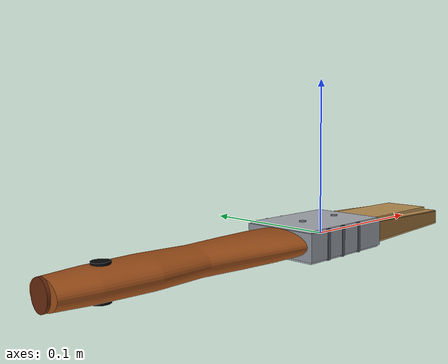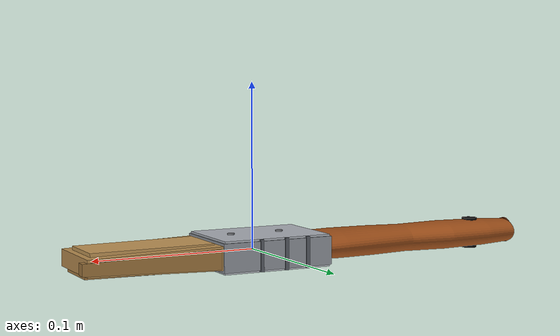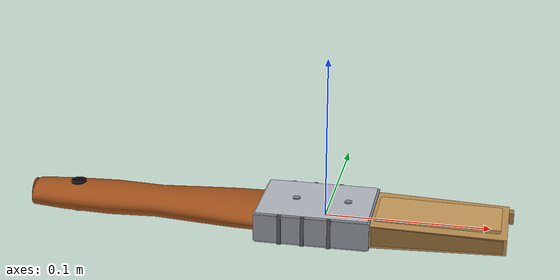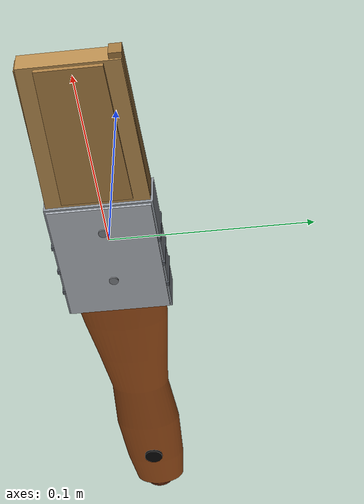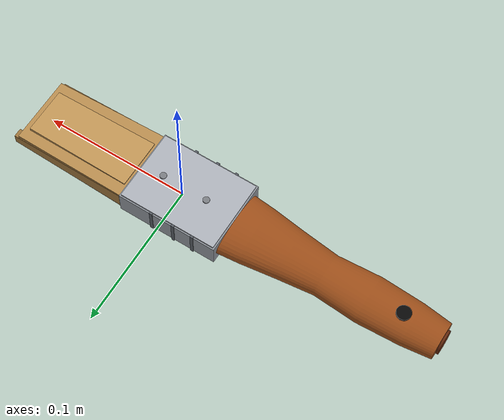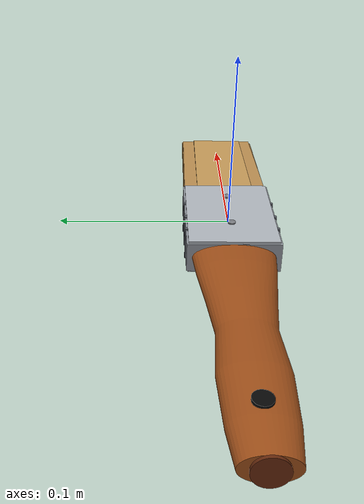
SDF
<?xml version="1.0"?>
<sdf version="1.6">
  <model name="paint_brush">
    <static>false</static>
    <link name="brush_link">
      <inertial>
        <mass>0.085</mass>
        <pose>-0.045 0 0 0 0 0</pose>
        <inertia>
          <ixx>0.000020</ixx><iyy>0.00038</iyy><izz>0.00039</izz>
          <ixy>0</ixy><ixz>0</ixz><iyz>0</iyz>
        </inertia>
      </inertial>

      <!-- Wooden handle -->
      <visual name="wood_handle"><geometry><mesh><uri>model://paint_brush/meshes/wood_handle.stl</uri></mesh></geometry><material><ambient>0.28 0.13 0.045 1</ambient><diffuse>0.62 0.31 0.10 1</diffuse><specular>0.08 0.06 0.04 1</specular></material></visual>
      <visual name="handle_end_cap"><geometry><mesh><uri>model://paint_brush/meshes/handle_end_cap.stl</uri></mesh></geometry><material><ambient>0.18 0.07 0.02 1</ambient><diffuse>0.40 0.16 0.05 1</diffuse><specular>0.06 0.04 0.02 1</specular></material></visual>
      <visual name="hole_top"><geometry><mesh><uri>model://paint_brush/meshes/hole_top.stl</uri></mesh></geometry><material><ambient>0.02 0.02 0.02 1</ambient><diffuse>0.03 0.03 0.03 1</diffuse><specular>0.08 0.08 0.08 1</specular></material></visual>
      <visual name="hole_bottom"><geometry><mesh><uri>model://paint_brush/meshes/hole_bottom.stl</uri></mesh></geometry><material><ambient>0.02 0.02 0.02 1</ambient><diffuse>0.03 0.03 0.03 1</diffuse><specular>0.08 0.08 0.08 1</specular></material></visual>

      <!-- Stainless ferrule -->
      <visual name="ferrule_body"><geometry><mesh><uri>model://paint_brush/meshes/ferrule_body.stl</uri></mesh></geometry><material><ambient>0.20 0.21 0.22 1</ambient><diffuse>0.56 0.58 0.61 1</diffuse><specular>0.95 0.95 0.95 1</specular></material></visual>
      <visual name="ferrule_face_top"><geometry><mesh><uri>model://paint_brush/meshes/ferrule_face_top.stl</uri></mesh></geometry><material><ambient>0.28 0.29 0.30 1</ambient><diffuse>0.68 0.70 0.73 1</diffuse><specular>1 1 1 1</specular></material></visual>
      <visual name="ferrule_face_bottom"><geometry><mesh><uri>model://paint_brush/meshes/ferrule_face_bottom.stl</uri></mesh></geometry><material><ambient>0.28 0.29 0.30 1</ambient><diffuse>0.68 0.70 0.73 1</diffuse><specular>1 1 1 1</specular></material></visual>
      <visual name="crimp1"><geometry><mesh><uri>model://paint_brush/meshes/ferrule_crimp_1.stl</uri></mesh></geometry><material><ambient>0.11 0.12 0.13 1</ambient><diffuse>0.34 0.36 0.39 1</diffuse><specular>0.85 0.85 0.85 1</specular></material></visual>
      <visual name="crimp2"><geometry><mesh><uri>model://paint_brush/meshes/ferrule_crimp_2.stl</uri></mesh></geometry><material><ambient>0.11 0.12 0.13 1</ambient><diffuse>0.34 0.36 0.39 1</diffuse><specular>0.85 0.85 0.85 1</specular></material></visual>
      <visual name="crimp3"><geometry><mesh><uri>model://paint_brush/meshes/ferrule_crimp_3.stl</uri></mesh></geometry><material><ambient>0.11 0.12 0.13 1</ambient><diffuse>0.34 0.36 0.39 1</diffuse><specular>0.85 0.85 0.85 1</specular></material></visual>
      <visual name="rivet_top_1"><geometry><mesh><uri>model://paint_brush/meshes/rivet_top_1.stl</uri></mesh></geometry><material><ambient>0.17 0.17 0.18 1</ambient><diffuse>0.48 0.49 0.51 1</diffuse><specular>1 1 1 1</specular></material></visual>
      <visual name="rivet_top_2"><geometry><mesh><uri>model://paint_brush/meshes/rivet_top_2.stl</uri></mesh></geometry><material><ambient>0.17 0.17 0.18 1</ambient><diffuse>0.48 0.49 0.51 1</diffuse><specular>1 1 1 1</specular></material></visual>
      <visual name="rivet_bottom_1"><geometry><mesh><uri>model://paint_brush/meshes/rivet_bottom_1.stl</uri></mesh></geometry><material><ambient>0.17 0.17 0.18 1</ambient><diffuse>0.48 0.49 0.51 1</diffuse><specular>1 1 1 1</specular></material></visual>
      <visual name="rivet_bottom_2"><geometry><mesh><uri>model://paint_brush/meshes/rivet_bottom_2.stl</uri></mesh></geometry><material><ambient>0.17 0.17 0.18 1</ambient><diffuse>0.48 0.49 0.51 1</diffuse><specular>1 1 1 1</specular></material></visual>

      <!-- Natural bristles -->
      <visual name="bristles_center"><geometry><mesh><uri>model://paint_brush/meshes/bristles_center.stl</uri></mesh></geometry><material><ambient>0.30 0.21 0.11 1</ambient><diffuse>0.72 0.55 0.31 1</diffuse><specular>0.04 0.04 0.03 1</specular></material></visual>
      <visual name="bristles_side_l"><geometry><mesh><uri>model://paint_brush/meshes/bristles_side_l.stl</uri></mesh></geometry><material><ambient>0.23 0.16 0.08 1</ambient><diffuse>0.58 0.42 0.21 1</diffuse><specular>0.03 0.03 0.02 1</specular></material></visual>
      <visual name="bristles_side_r"><geometry><mesh><uri>model://paint_brush/meshes/bristles_side_r.stl</uri></mesh></geometry><material><ambient>0.25 0.18 0.09 1</ambient><diffuse>0.62 0.46 0.24 1</diffuse><specular>0.03 0.03 0.02 1</specular></material></visual>
      <visual name="bristles_top"><geometry><mesh><uri>model://paint_brush/meshes/bristles_top.stl</uri></mesh></geometry><material><ambient>0.33 0.24 0.13 1</ambient><diffuse>0.76 0.59 0.34 1</diffuse><specular>0.03 0.03 0.02 1</specular></material></visual>
      <visual name="bristles_bottom"><geometry><mesh><uri>model://paint_brush/meshes/bristles_bottom.stl</uri></mesh></geometry><material><ambient>0.27 0.19 0.10 1</ambient><diffuse>0.66 0.49 0.26 1</diffuse><specular>0.03 0.03 0.02 1</specular></material></visual>

      <!-- Simplified collision: handle + ferrule/bristle region -->
      <collision name="handle_collision"><pose>-0.112 0 0 0 0 0</pose><geometry><box><size>0.148 0.043 0.020</size></box></geometry><surface><friction><ode><mu>1.0</mu><mu2>1.0</mu2></ode></friction></surface></collision>
      <collision name="head_collision"><pose>0.036 0 0 0 0 0</pose><geometry><box><size>0.145 0.053 0.019</size></box></geometry><surface><friction><ode><mu>1.0</mu><mu2>1.0</mu2></ode></friction></surface></collision>

      <velocity_decay><linear>0.06</linear><angular>0.12</angular></velocity_decay>
    </link>
  </model>
</sdf>
